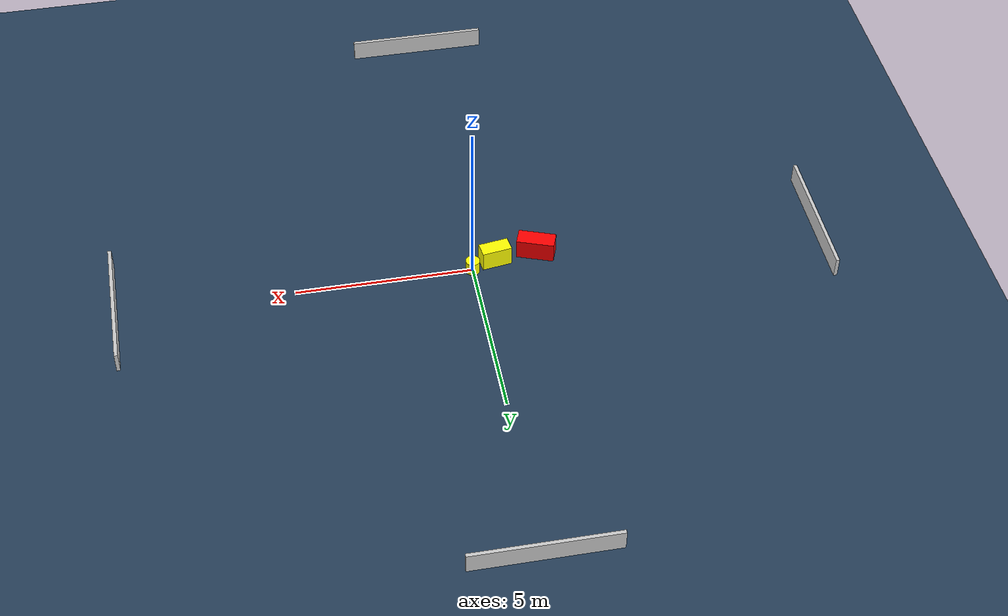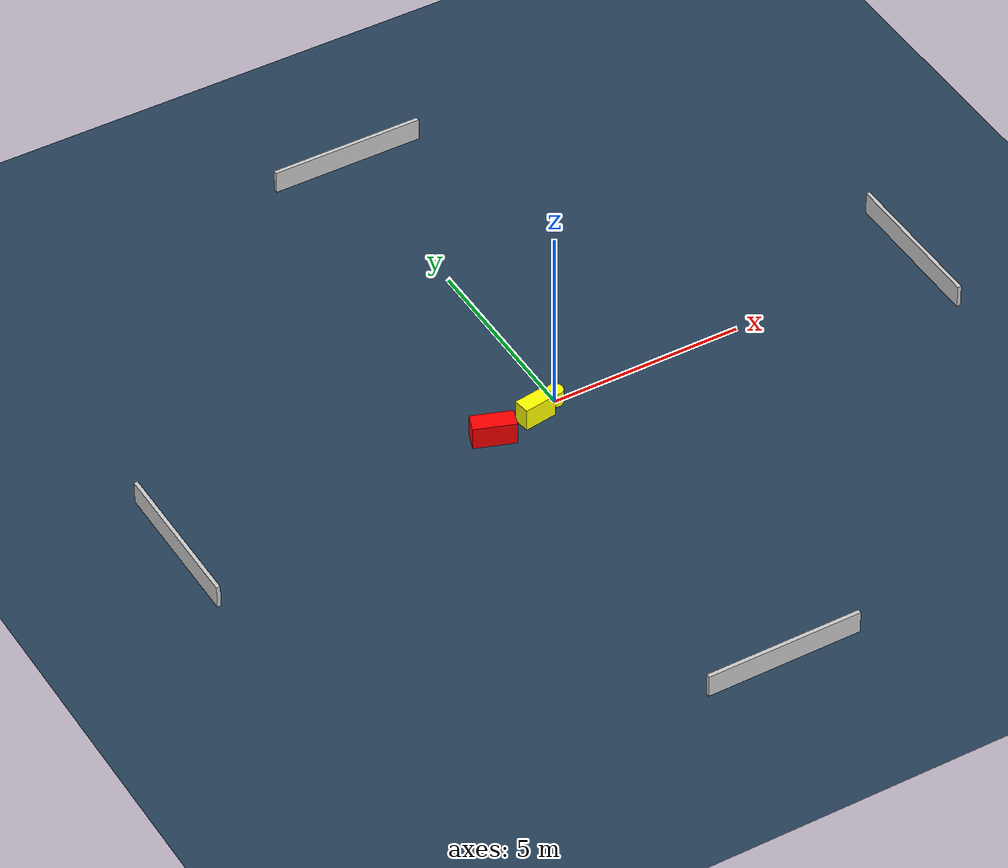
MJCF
<?xml version="1.0" ?>
<mujoco model="generated_environment">
  <option timestep="0.01" integrator="RK4" cone="elliptic"/>
  <default>
    <geom density="1"/>
  </default>
  <asset>
    <texture builtin="gradient" height="3072" name="skybox" rgb1="0.3 0.5 0.7" rgb2="0 0 0" type="skybox" width="512"/>
    <texture builtin="checker" height="300" name="groundplane" rgb1="0.2 0.3 0.4" rgb2="0.1 0.2 0.3" type="2d" width="300"/>
    <material name="groundplane" reflectance="0.2" texrepeat="5 5" texture="groundplane"/>
  </asset>
  <worldbody>
    <light dir="0 0 -1" directional="true" pos="0 0 1.5"/>
    <geom condim="3" friction="0.5 0.005 0.001" material="groundplane" name="floor" pos="0 0 0" size="0 0 0.05" type="plane"/>
    <body name="walls">
      <geom name="wall_1" condim="4" pos="-10.0 0.0 0.3" rgba="0.800000011920929 0.800000011920929 0.800000011920929 1.0" size="0.05 2.0 0.3" type="box"/>
      <geom name="wall_2" condim="4" pos="10.0 0.0 0.3" rgba="0.800000011920929 0.800000011920929 0.800000011920929 1.0" size="0.05 2.0 0.3" type="box"/>
      <geom name="wall_3" condim="4" pos="0.0 -10.0 0.3" rgba="0.800000011920929 0.800000011920929 0.800000011920929 1.0" size="2.0 0.05 0.3" type="box"/>
      <geom name="wall_4" condim="4" pos="0.0 10.0 0.3" rgba="0.800000011920929 0.800000011920929 0.800000011920929 1.0" size="2.0 0.05 0.3" type="box"/>
    </body>
    <body name="robot">
      <joint name="joint_x" type="slide" pos="0 0 0" axis="1 0 0"/>
      <joint name="joint_y" type="slide" pos="0 0 0" axis="0 1 0"/>
      <geom name="robot" type="cylinder" pos="0.0 0.0 0.2" size="0.2 0.2 0.0" mass="5.0" friction="1.0 0.005 0.0001" condim="4" rgba="1.0 1.0 0.0 1.0"/>
    </body>
    <body name="obstacle_1_movable">
      <geom name="obstacle_1_movable" condim="4" pos="-0.6827548126623902 -0.2395186686318499 0.3" euler="0 0 278.30451019622245" friction="0.0 0.005 0.001" rgba="1.0 1.0 0.0 1.0" size="0.2102754106071388 0.424249675850924 0.3" type="box" mass="0.1"/>
      <joint type="free"/>
    </body>
    <body name="obstacle_2_static">
      <geom name="obstacle_2_static" condim="4" pos="-1.8923564542062776 -0.3652871087498112 0.3" euler="0 0 70.03826577802654" friction="0.0 0.005 0.001" rgba="1.0 0.0 0.0 1.0" size="0.23994839680170188 0.5331733415061749 0.3" type="box"/>
    </body>
  </worldbody>
  <actuator>
    <motor name="actuator_x" joint="joint_x" gear="1" ctrlrange="-1 1"/>
    <motor name="actuator_y" joint="joint_y" gear="1" ctrlrange="-1 1"/>
  </actuator>
</mujoco>
